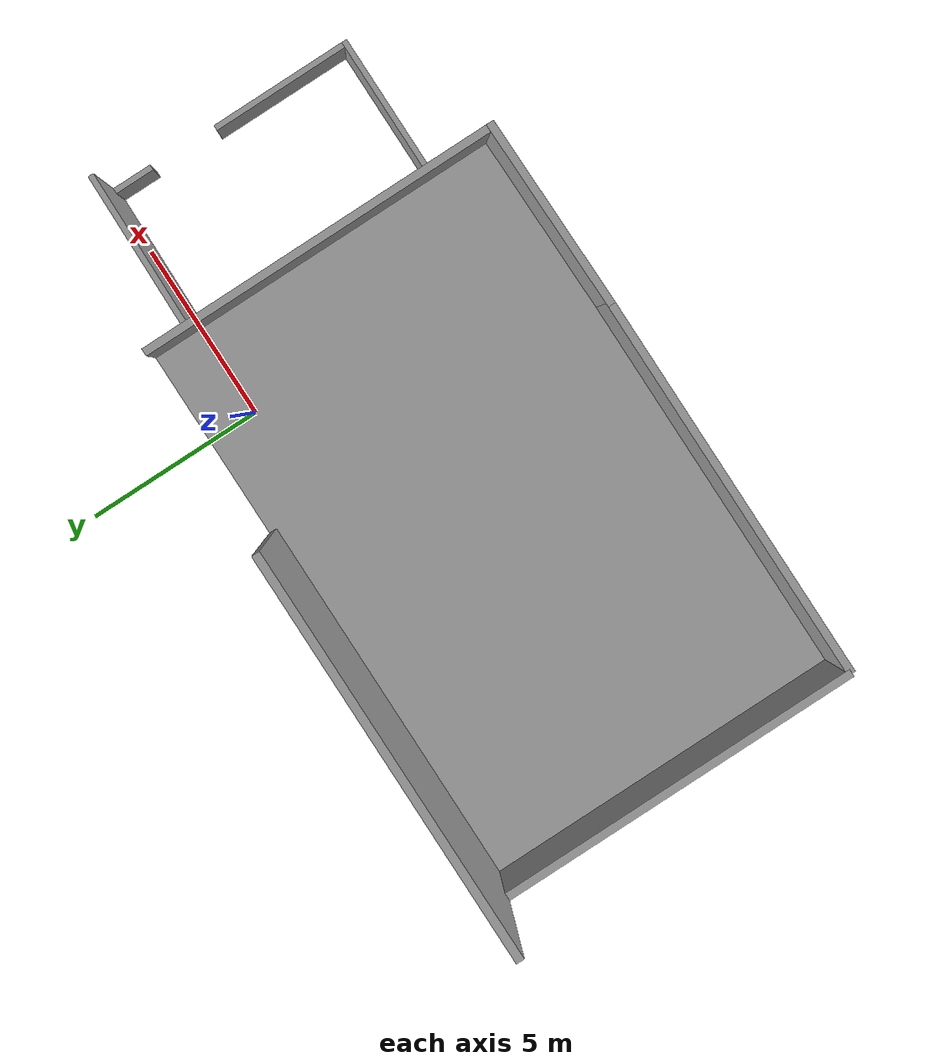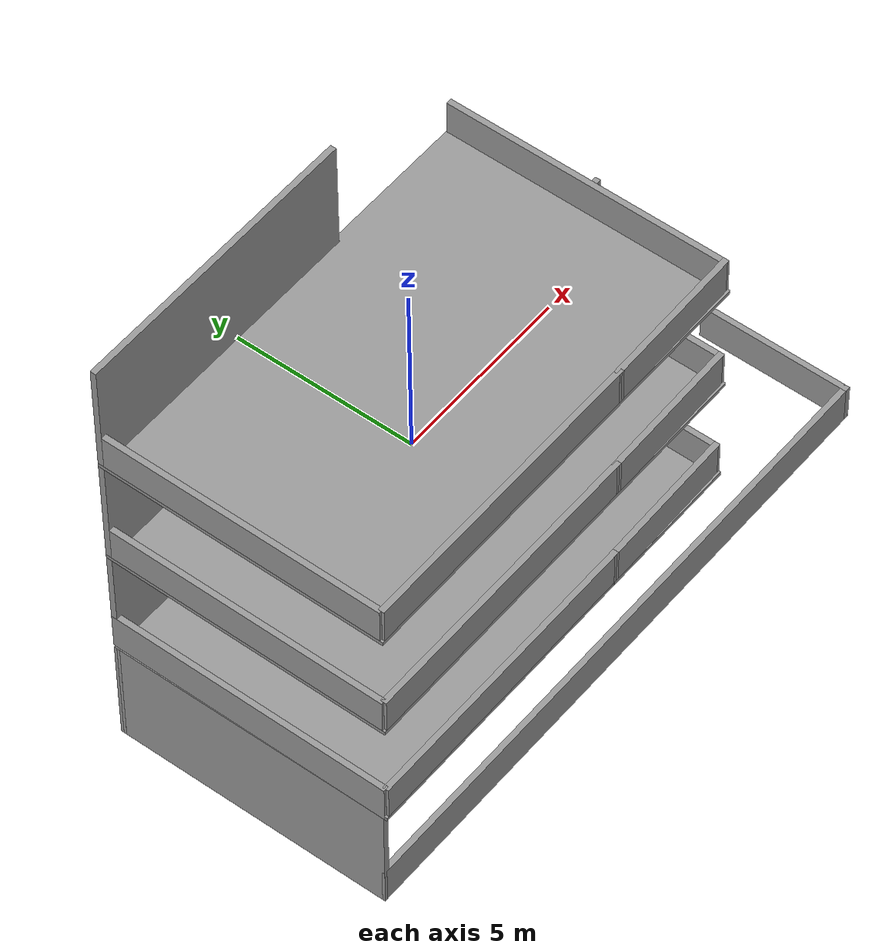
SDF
<?xml version='1.0'?>
<sdf version='1.7'>
  <model name='multiFloor'>
    <pose>-1.63463 -3.60544 0 0 -0 0</pose>
    <link name='Floor_4'>
      <collision name='Floor_4_Collision'>
        <geometry>
          <box>
            <size>11.4529 7.31695 0.1</size>
          </box>
        </geometry>
        <pose>0 0 0.05 0 -0 0</pose>
      </collision>
      <visual name='Floor_4_Visual'>
        <pose>0 0 0.05 0 -0 0</pose>
        <geometry>
          <box>
            <size>11.4529 7.31695 0.1</size>
          </box>
        </geometry>
        <material>
          <script>
            <uri>file://media/materials/scripts/gazebo.material</uri>
            <name>Gazebo/Grey</name>
          </script>
          <ambient>1 1 1 1</ambient>
        </material>
        <meta>
          <layer>1</layer>
        </meta>
      </visual>
      <pose>-2.53184 0 3 0 -0 0</pose>
    </link>
    <link name='Floor_5'>
      <collision name='Floor_5_Collision'>
        <geometry>
          <box>
            <size>11.4531 7.31724 0.1</size>
          </box>
        </geometry>
        <pose>0 0 0.05 0 -0 0</pose>
      </collision>
      <visual name='Floor_5_Visual'>
        <pose>0 0 0.05 0 -0 0</pose>
        <geometry>
          <box>
            <size>11.4531 7.31724 0.1</size>
          </box>
        </geometry>
        <material>
          <script>
            <uri>file://media/materials/scripts/gazebo.material</uri>
            <name>Gazebo/Grey</name>
          </script>
          <ambient>1 1 1 1</ambient>
        </material>
        <meta>
          <layer>2</layer>
        </meta>
      </visual>
      <pose>-2.53184 0 6 0 -0 0</pose>
    </link>
    <link name='Floor_6'>
      <collision name='Floor_6_Collision'>
        <geometry>
          <box>
            <size>11.4531 7.31724 0.1</size>
          </box>
        </geometry>
        <pose>0 0 0.05 0 -0 0</pose>
      </collision>
      <visual name='Floor_6_Visual'>
        <pose>0 0 0.05 0 -0 0</pose>
        <geometry>
          <box>
            <size>11.4531 7.31724 0.1</size>
          </box>
        </geometry>
        <material>
          <script>
            <uri>file://media/materials/scripts/gazebo.material</uri>
            <name>Gazebo/Grey</name>
          </script>
          <ambient>1 1 1 1</ambient>
        </material>
        <meta>
          <layer>3</layer>
        </meta>
      </visual>
      <pose>-2.53184 0 9 0 -0 0</pose>
    </link>
    <link name='Wall_0'>
      <collision name='Wall_0_Collision'>
        <geometry>
          <box>
            <size>7.17511 0.15 3</size>
          </box>
        </geometry>
        <pose>0 0 1.5 0 -0 0</pose>
      </collision>
      <visual name='Wall_0_Visual'>
        <pose>0 0 1.5 0 -0 0</pose>
        <geometry>
          <box>
            <size>7.17511 0.15 3</size>
          </box>
        </geometry>
        <material>
          <script>
            <uri>file://media/materials/scripts/gazebo.material</uri>
            <name>Gazebo/Grey</name>
          </script>
          <ambient>1 1 1 1</ambient>
        </material>
        <meta>
          <layer>0</layer>
        </meta>
      </visual>
      <pose>-8.19987 0.035942 0 0 -0 -1.56553</pose>
    </link>
    <link name='Wall_1'>
      <collision name='Wall_1_Collision'>
        <geometry>
          <box>
            <size>16.5 0.15 1</size>
          </box>
        </geometry>
        <pose>0 0 0.5 0 -0 0</pose>
      </collision>
      <visual name='Wall_1_Visual'>
        <pose>0 0 0.5 0 -0 0</pose>
        <geometry>
          <box>
            <size>16.5 0.15 1</size>
          </box>
        </geometry>
        <material>
          <script>
            <uri>file://media/materials/scripts/gazebo.material</uri>
            <name>Gazebo/Grey</name>
          </script>
          <ambient>1 1 1 1</ambient>
        </material>
        <meta>
          <layer>0</layer>
        </meta>
      </visual>
      <pose>-0.006368 -3.47656 0 0 -0 0</pose>
    </link>
    <link name='Wall_10'>
      <collision name='Wall_10_Collision'>
        <geometry>
          <box>
            <size>7.5 0.15 3</size>
          </box>
        </geometry>
        <pose>0 0 1.5 0 -0 0</pose>
      </collision>
      <visual name='Wall_10_Visual'>
        <pose>0 0 1.5 0 -0 0</pose>
        <geometry>
          <box>
            <size>7.5 0.15 3</size>
          </box>
        </geometry>
        <material>
          <script>
            <uri>file://media/materials/scripts/gazebo.material</uri>
            <name>Gazebo/Grey</name>
          </script>
          <ambient>1 1 1 1</ambient>
        </material>
        <meta>
          <layer>0</layer>
        </meta>
      </visual>
      <pose>-4.54337 3.54844 0 0 -0 0</pose>
    </link>
    <link name='Wall_22'>
      <collision name='Wall_22_Collision'>
        <geometry>
          <box>
            <size>4 0.15 1</size>
          </box>
        </geometry>
        <pose>0 0 0.5 0 -0 0</pose>
      </collision>
      <visual name='Wall_22_Visual'>
        <pose>0 0 0.5 0 -0 0</pose>
        <geometry>
          <box>
            <size>4 0.15 1</size>
          </box>
        </geometry>
        <material>
          <script>
            <uri>file://media/materials/scripts/gazebo.material</uri>
            <name>Gazebo/Grey</name>
          </script>
          <ambient>1 1 1 1</ambient>
        </material>
        <meta>
          <layer>0</layer>
        </meta>
      </visual>
      <pose>8.16863 -1.55156 0 0 -0 1.5708</pose>
    </link>
    <link name='Wall_24'>
      <collision name='Wall_24_Collision'>
        <geometry>
          <box>
            <size>1.25 0.15 1</size>
          </box>
        </geometry>
        <pose>0 0 0.5 0 -0 0</pose>
      </collision>
      <visual name='Wall_24_Visual'>
        <pose>0 0 0.5 0 -0 0</pose>
        <geometry>
          <box>
            <size>1.25 0.15 1</size>
          </box>
        </geometry>
        <material>
          <script>
            <uri>file://media/materials/scripts/gazebo.material</uri>
            <name>Gazebo/Grey</name>
          </script>
          <ambient>1 1 1 1</ambient>
        </material>
        <meta>
          <layer>0</layer>
        </meta>
      </visual>
      <pose>8.21763 2.96744 0 0 -0 -1.5708</pose>
    </link>
    <link name='Wall_3'>
      <collision name='Wall_3_Collision'>
        <geometry>
          <box>
            <size>4.16746 0.15 3</size>
          </box>
        </geometry>
        <pose>0 0 1.5 0 -0 0</pose>
      </collision>
      <visual name='Wall_3_Visual'>
        <pose>0 0 1.5 0 -0 0</pose>
        <geometry>
          <box>
            <size>4.16746 0.15 3</size>
          </box>
        </geometry>
        <material>
          <script>
            <uri>file://media/materials/scripts/gazebo.material</uri>
            <name>Gazebo/Grey</name>
          </script>
          <ambient>1 1 1 1</ambient>
        </material>
        <meta>
          <layer>0</layer>
        </meta>
      </visual>
      <pose>6.20913 3.54794 0 0 -0 3.12641</pose>
    </link>
    <link name='Wall_32'>
      <collision name='Wall_32_Collision'>
        <geometry>
          <box>
            <size>7.25 0.15 1</size>
          </box>
        </geometry>
        <pose>0 0 0.5 0 -0 0</pose>
      </collision>
      <visual name='Wall_32_Visual'>
        <pose>0 0 0.5 0 -0 0</pose>
        <geometry>
          <box>
            <size>7.25 0.15 1</size>
          </box>
        </geometry>
        <material>
          <script>
            <uri>file://media/materials/scripts/gazebo.material</uri>
            <name>Gazebo/Grey</name>
          </script>
          <ambient>1 1 1 1</ambient>
        </material>
        <meta>
          <layer>1</layer>
        </meta>
      </visual>
      <pose>-8.18337 0.033442 3 0 -0 -1.5708</pose>
    </link>
    <link name='Wall_35'>
      <collision name='Wall_35_Collision'>
        <geometry>
          <box>
            <size>7.53518 0.15 3</size>
          </box>
        </geometry>
        <pose>0 0 1.5 0 -0 0</pose>
      </collision>
      <visual name='Wall_35_Visual'>
        <pose>0 0 1.5 0 -0 0</pose>
        <geometry>
          <box>
            <size>7.53518 0.15 3</size>
          </box>
        </geometry>
        <material>
          <script>
            <uri>file://media/materials/scripts/gazebo.material</uri>
            <name>Gazebo/Grey</name>
          </script>
          <ambient>1 1 1 1</ambient>
        </material>
        <meta>
          <layer>1</layer>
        </meta>
      </visual>
      <pose>-4.49069 3.58353 3 0 -0 2.4e-05</pose>
    </link>
    <link name='Wall_42'>
      <collision name='Wall_42_Collision'>
        <geometry>
          <box>
            <size>3.78931 0.15 1</size>
          </box>
        </geometry>
        <pose>0 0 0.5 0 -0 0</pose>
      </collision>
      <visual name='Wall_42_Visual'>
        <pose>0 0 0.5 0 -0 0</pose>
        <geometry>
          <box>
            <size>3.78931 0.15 1</size>
          </box>
        </geometry>
        <material>
          <script>
            <uri>file://media/materials/scripts/gazebo.material</uri>
            <name>Gazebo/Grey</name>
          </script>
          <ambient>1 1 1 1</ambient>
        </material>
        <meta>
          <layer>1</layer>
        </meta>
      </visual>
      <pose>1.29913 -3.55656 3 0 -0 0.014289</pose>
    </link>
    <link name='Wall_45'>
      <collision name='Wall_45_Collision'>
        <geometry>
          <box>
            <size>7.25 0.15 1</size>
          </box>
        </geometry>
        <pose>0 0 0.5 0 -0 0</pose>
      </collision>
      <visual name='Wall_45_Visual'>
        <pose>0 0 0.5 0 -0 0</pose>
        <geometry>
          <box>
            <size>7.25 0.15 1</size>
          </box>
        </geometry>
        <material>
          <script>
            <uri>file://media/materials/scripts/gazebo.material</uri>
            <name>Gazebo/Grey</name>
          </script>
          <ambient>1 1 1 1</ambient>
        </material>
        <meta>
          <layer>1</layer>
        </meta>
      </visual>
      <pose>3.11863 0.019442 3 0 -0 1.5708</pose>
    </link>
    <link name='Wall_47'>
      <collision name='Wall_47_Collision'>
        <geometry>
          <box>
            <size>7.75 0.15 1</size>
          </box>
        </geometry>
        <pose>0 0 0.5 0 -0 0</pose>
      </collision>
      <visual name='Wall_47_Visual'>
        <pose>0 0 0.5 0 -0 0</pose>
        <geometry>
          <box>
            <size>7.75 0.15 1</size>
          </box>
        </geometry>
        <material>
          <script>
            <uri>file://media/materials/scripts/gazebo.material</uri>
            <name>Gazebo/Grey</name>
          </script>
          <ambient>1 1 1 1</ambient>
        </material>
        <meta>
          <layer>1</layer>
        </meta>
      </visual>
      <pose>-4.32037 -3.58256 3 0 -0 3.14159</pose>
    </link>
    <link name='Wall_49'>
      <collision name='Wall_49_Collision'>
        <geometry>
          <box>
            <size>7.25 0.15 1</size>
          </box>
        </geometry>
        <pose>0 0 0.5 0 -0 0</pose>
      </collision>
      <visual name='Wall_49_Visual'>
        <pose>0 0 0.5 0 -0 0</pose>
        <geometry>
          <box>
            <size>7.25 0.15 1</size>
          </box>
        </geometry>
        <material>
          <script>
            <uri>file://media/materials/scripts/gazebo.material</uri>
            <name>Gazebo/Grey</name>
          </script>
          <ambient>1 1 1 1</ambient>
        </material>
        <meta>
          <layer>2</layer>
        </meta>
      </visual>
      <pose>-8.18337 0.033442 6 0 -0 -1.5708</pose>
    </link>
    <link name='Wall_50'>
      <collision name='Wall_50_Collision'>
        <geometry>
          <box>
            <size>7.53536 0.15 3</size>
          </box>
        </geometry>
        <pose>0 0 1.5 0 -0 0</pose>
      </collision>
      <visual name='Wall_50_Visual'>
        <pose>0 0 1.5 0 -0 0</pose>
        <geometry>
          <box>
            <size>7.53536 0.15 3</size>
          </box>
        </geometry>
        <material>
          <script>
            <uri>file://media/materials/scripts/gazebo.material</uri>
            <name>Gazebo/Grey</name>
          </script>
          <ambient>1 1 1 1</ambient>
        </material>
        <meta>
          <layer>2</layer>
        </meta>
      </visual>
      <pose>-4.49069 3.58353 6 0 -0 2.4e-05</pose>
    </link>
    <link name='Wall_51'>
      <collision name='Wall_51_Collision'>
        <geometry>
          <box>
            <size>3.78937 0.15 1</size>
          </box>
        </geometry>
        <pose>0 0 0.5 0 -0 0</pose>
      </collision>
      <visual name='Wall_51_Visual'>
        <pose>0 0 0.5 0 -0 0</pose>
        <geometry>
          <box>
            <size>3.78937 0.15 1</size>
          </box>
        </geometry>
        <material>
          <script>
            <uri>file://media/materials/scripts/gazebo.material</uri>
            <name>Gazebo/Grey</name>
          </script>
          <ambient>1 1 1 1</ambient>
        </material>
        <meta>
          <layer>2</layer>
        </meta>
      </visual>
      <pose>1.29913 -3.55656 6 0 -0 0.014289</pose>
    </link>
    <link name='Wall_52'>
      <collision name='Wall_52_Collision'>
        <geometry>
          <box>
            <size>7.25 0.15 1</size>
          </box>
        </geometry>
        <pose>0 0 0.5 0 -0 0</pose>
      </collision>
      <visual name='Wall_52_Visual'>
        <pose>0 0 0.5 0 -0 0</pose>
        <geometry>
          <box>
            <size>7.25 0.15 1</size>
          </box>
        </geometry>
        <material>
          <script>
            <uri>file://media/materials/scripts/gazebo.material</uri>
            <name>Gazebo/Grey</name>
          </script>
          <ambient>1 1 1 1</ambient>
        </material>
        <meta>
          <layer>2</layer>
        </meta>
      </visual>
      <pose>3.11863 0.019442 6 0 -0 1.5708</pose>
    </link>
    <link name='Wall_53'>
      <collision name='Wall_53_Collision'>
        <geometry>
          <box>
            <size>7.75 0.15 1</size>
          </box>
        </geometry>
        <pose>0 0 0.5 0 -0 0</pose>
      </collision>
      <visual name='Wall_53_Visual'>
        <pose>0 0 0.5 0 -0 0</pose>
        <geometry>
          <box>
            <size>7.75 0.15 1</size>
          </box>
        </geometry>
        <material>
          <script>
            <uri>file://media/materials/scripts/gazebo.material</uri>
            <name>Gazebo/Grey</name>
          </script>
          <ambient>1 1 1 1</ambient>
        </material>
        <meta>
          <layer>2</layer>
        </meta>
      </visual>
      <pose>-4.32037 -3.58256 6 0 -0 3.14159</pose>
    </link>
    <link name='Wall_54'>
      <collision name='Wall_54_Collision'>
        <geometry>
          <box>
            <size>7.25 0.15 1</size>
          </box>
        </geometry>
        <pose>0 0 0.5 0 -0 0</pose>
      </collision>
      <visual name='Wall_54_Visual'>
        <pose>0 0 0.5 0 -0 0</pose>
        <geometry>
          <box>
            <size>7.25 0.15 1</size>
          </box>
        </geometry>
        <material>
          <script>
            <uri>file://media/materials/scripts/gazebo.material</uri>
            <name>Gazebo/Grey</name>
          </script>
          <ambient>1 1 1 1</ambient>
        </material>
        <meta>
          <layer>3</layer>
        </meta>
      </visual>
      <pose>-8.18337 0.033442 9 0 -0 -1.5708</pose>
    </link>
    <link name='Wall_55'>
      <collision name='Wall_55_Collision'>
        <geometry>
          <box>
            <size>7.53536 0.15 3</size>
          </box>
        </geometry>
        <pose>0 0 1.5 0 -0 0</pose>
      </collision>
      <visual name='Wall_55_Visual'>
        <pose>0 0 1.5 0 -0 0</pose>
        <geometry>
          <box>
            <size>7.53536 0.15 3</size>
          </box>
        </geometry>
        <material>
          <script>
            <uri>file://media/materials/scripts/gazebo.material</uri>
            <name>Gazebo/Grey</name>
          </script>
          <ambient>1 1 1 1</ambient>
        </material>
        <meta>
          <layer>3</layer>
        </meta>
      </visual>
      <pose>-4.49069 3.58353 9 0 -0 2.4e-05</pose>
    </link>
    <link name='Wall_56'>
      <collision name='Wall_56_Collision'>
        <geometry>
          <box>
            <size>3.78937 0.15 1</size>
          </box>
        </geometry>
        <pose>0 0 0.5 0 -0 0</pose>
      </collision>
      <visual name='Wall_56_Visual'>
        <pose>0 0 0.5 0 -0 0</pose>
        <geometry>
          <box>
            <size>3.78937 0.15 1</size>
          </box>
        </geometry>
        <material>
          <script>
            <uri>file://media/materials/scripts/gazebo.material</uri>
            <name>Gazebo/Grey</name>
          </script>
          <ambient>1 1 1 1</ambient>
        </material>
        <meta>
          <layer>3</layer>
        </meta>
      </visual>
      <pose>1.29913 -3.55656 9 0 -0 0.014289</pose>
    </link>
    <link name='Wall_57'>
      <collision name='Wall_57_Collision'>
        <geometry>
          <box>
            <size>7.25 0.15 1</size>
          </box>
        </geometry>
        <pose>0 0 0.5 0 -0 0</pose>
      </collision>
      <visual name='Wall_57_Visual'>
        <pose>0 0 0.5 0 -0 0</pose>
        <geometry>
          <box>
            <size>7.25 0.15 1</size>
          </box>
        </geometry>
        <material>
          <script>
            <uri>file://media/materials/scripts/gazebo.material</uri>
            <name>Gazebo/Grey</name>
          </script>
          <ambient>1 1 1 1</ambient>
        </material>
        <meta>
          <layer>3</layer>
        </meta>
      </visual>
      <pose>3.11863 0.019442 9 0 -0 1.5708</pose>
    </link>
    <link name='Wall_58'>
      <collision name='Wall_58_Collision'>
        <geometry>
          <box>
            <size>7.75 0.15 1</size>
          </box>
        </geometry>
        <pose>0 0 0.5 0 -0 0</pose>
      </collision>
      <visual name='Wall_58_Visual'>
        <pose>0 0 0.5 0 -0 0</pose>
        <geometry>
          <box>
            <size>7.75 0.15 1</size>
          </box>
        </geometry>
        <material>
          <script>
            <uri>file://media/materials/scripts/gazebo.material</uri>
            <name>Gazebo/Grey</name>
          </script>
          <ambient>1 1 1 1</ambient>
        </material>
        <meta>
          <layer>3</layer>
        </meta>
      </visual>
      <pose>-4.32037 -3.58256 9 0 -0 3.14159</pose>
    </link>
    <static>1</static>
  </model>
</sdf>
